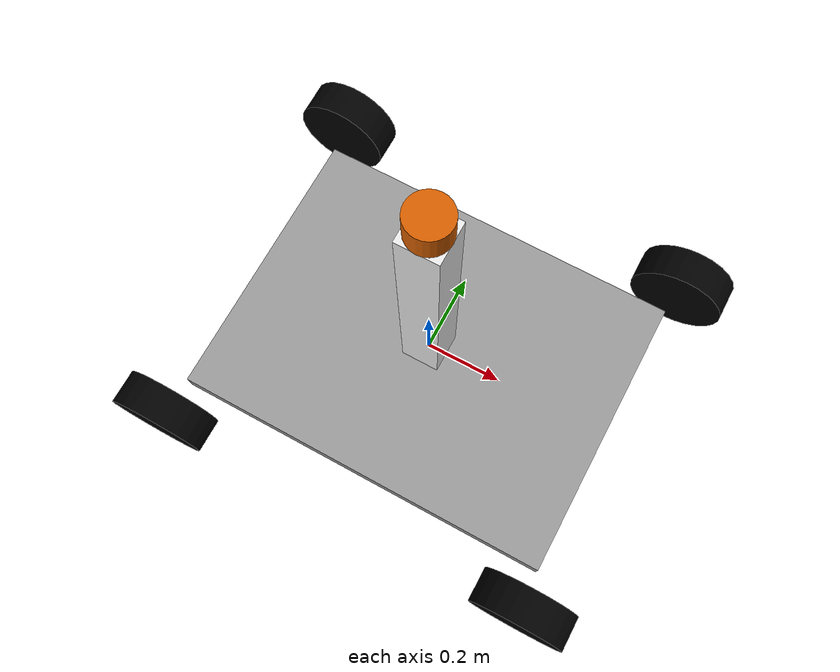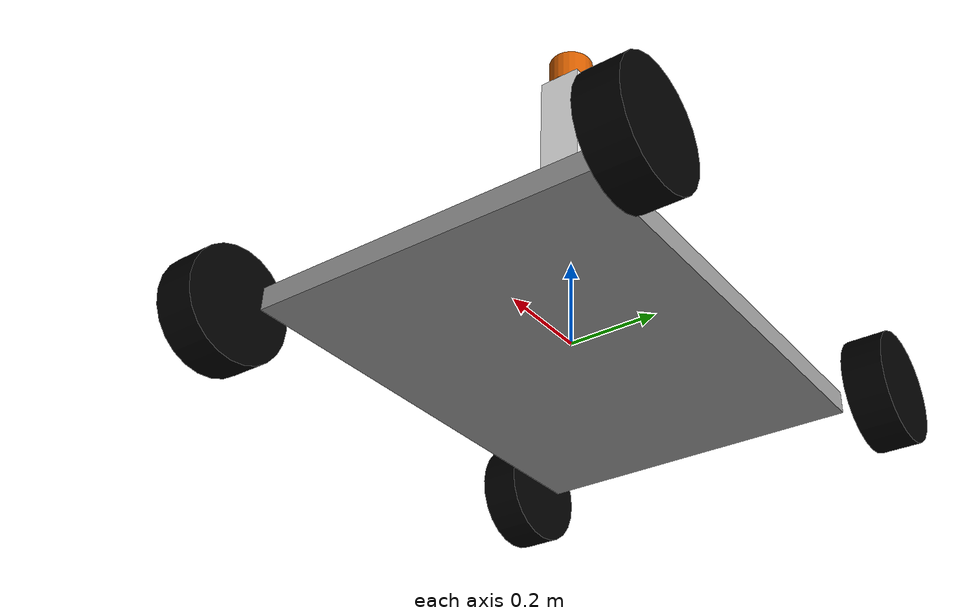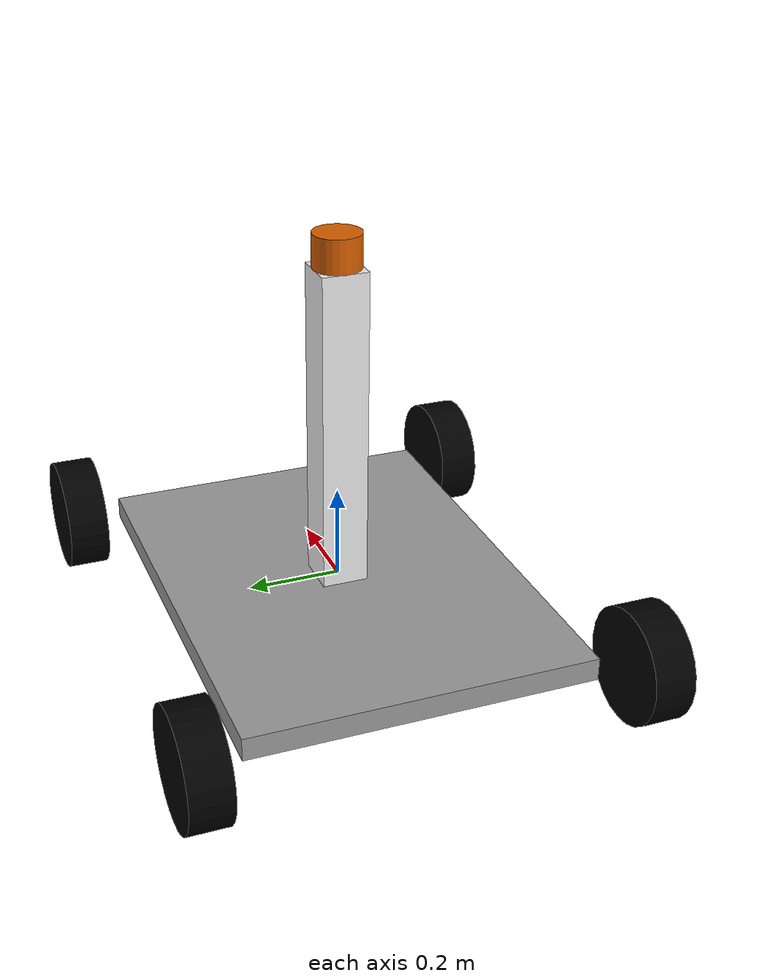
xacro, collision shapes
<?xml version="1.0"?>

<robot name="ackermann_robot" xmlns:xacro="http://www.ros.org/wiki/xacro">

  <!-- includes -->

  <!-- Degree-to-radian conversions -->
  <xacro:property name="degrees_45" value="0.785398163"/>
  <xacro:property name="degrees_90" value="1.57079633"/>

  <!-- chassis_length is measured along the x axis, chassis_width
       along the y axis, and chassis_height along the z axis. -->
  <xacro:property name="chassis_length" value="1"/>
  <xacro:property name="chassis_width" value="0.75"/>
  <xacro:property name="chassis_height" value="0.05"/>
  <xacro:property name="chassis_mass" value="3.788"/>

  <xacro:property name="hub_dia" value="0.09652"/>
  <xacro:property name="tire_dia" value="0.25"/>
  <xacro:property name="tire_width" value="0.0889"/>
  <xacro:property name="hex_hub_depth" value="0.01445"/>
  <xacro:property name="wheel_mass" value="0.29"/>

  <xacro:property name="wheelbase" value="1.02"/>
  <xacro:property name="hex_hub_dist" value="1"/>
  <xacro:property name="axle_length" value="0.03"/>
  <xacro:property name="wheel_travel" value="0.084"/>
  <xacro:property name="shock_z_offset" value="0.0655"/>

  <xacro:property name="shock_eff_limit" value="12.5106"/>
  <xacro:property name="shock_vel_limit" value="1000"/>

  <xacro:property name="axle_eff_limit" value="5.12766"/>
  <xacro:property name="axle_vel_limit" value="244.8696"/>

  <!-- These constants are used to simulate a Traxxas 2056 servo operated at
       6 V. servo_stall_torque is measured in N m. servo_no_load_speed is
       measured in rad/s. -->
  <xacro:property name="servo_stall_torque" value="0.5649"/>
  <xacro:property name="servo_no_load_speed" value="4.553"/>

  <!-- ctrl_period is gazebo_ros_control's control period. Unit: hertz. -->
  <xacro:property name="ctrl_period" value="0.01"/>

  <material name="battery_mat">
    <color rgba="0 0 1 1"/>
  </material>
  <material name="chassis_mat">
    <color rgba="0.6 0.6 0.6 1"/>
  </material>
  <material name="tire_mat">
    <color rgba="0 0 0 1"/>
  </material>

  <!-- Null inertial element. This is needed to make the model work with
       Gazebo. -->
  <xacro:macro name="null_inertial">
    <inertial>
      <mass value="0.001"/>
      <inertia ixx="0.001" ixy="0" ixz="0" iyy="0.001" iyz="0" izz="0.001"/>
    </inertial>
  </xacro:macro>

  <!-- Inertia of a solid cuboid. Width is measured along the x axis, depth
       along the y axis, and height along the z axis. -->
  <xacro:macro name="solid_cuboid_inertial"
               params="width depth height mass *origin">
    <inertial>
      <xacro:insert_block name="origin"/>
      <mass value="${mass}"/>
      <inertia ixx="${mass * (depth * depth + height * height) / 12}"
               ixy="0" ixz="0"
               iyy="${mass * (width * width + height * height) / 12}"
               iyz="0"
               izz="${mass * (width * width + depth * depth) / 12}"/>
    </inertial>
  </xacro:macro>

  <xacro:macro name="thick_walled_tube_inertial"
               params="inner_rad outer_rad height mass">
    <inertial>
      <mass value="${mass}"/>
      <inertia ixx="${(1 / 12) * mass * (3 * (inner_rad * inner_rad +
                    outer_rad * outer_rad) + height * height)}"
               ixy="0" ixz="0"
               iyy="${(1 / 12) * mass * (3 * (inner_rad * inner_rad +
                    outer_rad * outer_rad) + height * height)}"
               iyz="0"
               izz="${mass * (inner_rad * inner_rad +
                    outer_rad * outer_rad) / 2}"/>
    </inertial>
  </xacro:macro>

  <!-- Shock absorber -->
  <xacro:macro name="shock"
               params="lr_prefix fr_prefix lr_reflect fr_reflect child">
    <joint name="${lr_prefix}_${fr_prefix}_shock" type="prismatic">
      <parent link="chassis"/>
      <child link="${child}"/>

      <origin xyz="${fr_reflect * wheelbase / 2}
                   ${lr_reflect * ((hex_hub_dist / 2) - axle_length)}
                   ${(wheel_travel / 2) - shock_z_offset}"/>
      <axis xyz="0 0 -1"/>
      <limit lower="${-wheel_travel / 2}" upper="${wheel_travel / 2}"
             effort="${shock_eff_limit}" velocity="${shock_vel_limit}"/>
    </joint>
    <transmission name="${lr_prefix}_${fr_prefix}_shock_trans">
      <type>transmission_interface/SimpleTransmission</type>
      <joint name="${lr_prefix}_${fr_prefix}_shock">
        <hardwareInterface>hardware_interface/EffortJointInterface</hardwareInterface>
      </joint>
      <actuator name="${lr_prefix}_${fr_prefix}_shock_act">
        <mechanicalReduction>1</mechanicalReduction>
      </actuator>
    </transmission>
  </xacro:macro>

  <!-- The "wheel" macro defines an axle carrier, axle, and wheel. -->
  <xacro:macro name="wheel" params="lr_prefix fr_prefix lr_reflect">
    <link name="${lr_prefix}_${fr_prefix}_axle_carrier">
      <xacro:null_inertial/>
    </link>

    <!-- The left and right axles have the same axis so that identical
         rotation values cause the wheels to rotate in the same direction. -->
    <joint name="${lr_prefix}_${fr_prefix}_axle" type="continuous">
      <parent link="${lr_prefix}_${fr_prefix}_axle_carrier"/>
      <child link="${lr_prefix}_${fr_prefix}_wheel"/>
      <origin rpy="${degrees_90} 0 0"/>
      <axis xyz="0 0 -1"/>
      <limit effort="${axle_eff_limit}" velocity="${axle_vel_limit}"/>
    </joint>
    <transmission name="${lr_prefix}_${fr_prefix}_axle_trans">
      <type>transmission_interface/SimpleTransmission</type>
      <joint name="${lr_prefix}_${fr_prefix}_axle">
        <hardwareInterface>hardware_interface/EffortJointInterface</hardwareInterface>
      </joint>
      <actuator name="${lr_prefix}_${fr_prefix}_axle_act">
        <mechanicalReduction>1</mechanicalReduction>
      </actuator>
    </transmission>

    <link name="${lr_prefix}_${fr_prefix}_wheel">
      <visual>
        <origin xyz="0
                     ${lr_reflect * (axle_length - (tire_width /
                     2 - hex_hub_depth))}
                     0"/>
        <geometry>
          <cylinder radius="${tire_dia / 2}" length="${tire_width}"/>
        </geometry>
        <material name="tire_mat"/>
      </visual>

      <collision>
        <origin xyz="0
                     ${lr_reflect * (axle_length - (tire_width /
                     2 - hex_hub_depth))}
                     0"/>
        <geometry>
          <cylinder radius="${tire_dia / 2}" length="${tire_width}"/>
        </geometry>
      </collision>

      <xacro:thick_walled_tube_inertial
          inner_rad="${hub_dia / 2}" outer_rad="${tire_dia / 2}"
          height="${tire_width}" mass="${wheel_mass}"/>
    </link>

    <gazebo reference="${lr_prefix}_${fr_prefix}_wheel">
      <material>Gazebo/Black</material>
    </gazebo>
  </xacro:macro>

  <!-- Front wheel -->
  <xacro:macro name="front_wheel"
               params="lr_prefix fr_prefix lr_reflect fr_reflect">
    <xacro:shock lr_prefix="${lr_prefix}" fr_prefix="${fr_prefix}"
                 lr_reflect="${lr_reflect}" fr_reflect="${fr_reflect}"
                 child="${lr_prefix}_steering_link"/>

    <link name="${lr_prefix}_steering_link">
      <xacro:null_inertial/>
    </link>

    <joint name="${lr_prefix}_steering_joint" type="revolute">
      <parent link="${lr_prefix}_steering_link"/>
      <child link="${lr_prefix}_${fr_prefix}_axle_carrier"/>
      <axis xyz="0 0 1"/>
      <limit lower="${-degrees_45}" upper="${degrees_45}"
             effort="${servo_stall_torque}" velocity="${servo_no_load_speed}"/>
    </joint>
    <transmission name="${lr_prefix}_steering_trans">
      <type>transmission_interface/SimpleTransmission</type>
      <joint name="${lr_prefix}_steering_joint">
        <hardwareInterface>hardware_interface/EffortJointInterface</hardwareInterface>
      </joint>
      <actuator name="${lr_prefix}_steering_act">
        <mechanicalReduction>1</mechanicalReduction>
      </actuator>
    </transmission>

    <xacro:wheel lr_prefix="${lr_prefix}" fr_prefix="${fr_prefix}"
                 lr_reflect="${lr_reflect}"/>
  </xacro:macro>

  <!-- Rear wheel -->
  <xacro:macro name="rear_wheel"
               params="lr_prefix fr_prefix lr_reflect fr_reflect">
    <xacro:shock lr_prefix="${lr_prefix}" fr_prefix="${fr_prefix}"
                 lr_reflect="${lr_reflect}" fr_reflect="${fr_reflect}"
                 child="${lr_prefix}_${fr_prefix}_axle_carrier"/>
    <xacro:wheel lr_prefix="${lr_prefix}" fr_prefix="${fr_prefix}"
                 lr_reflect="${lr_reflect}"/>
  </xacro:macro>

  <!-- base_link must have geometry so that its axes can be displayed in
       rviz. -->
  <link name="base_link" />

  <!-- Chassis -->
  <link name="chassis">
    <visual>
      <origin xyz="0 0 ${-chassis_height / 2}"/>
      <geometry>
        <box size="${chassis_length} ${chassis_width} ${chassis_height}"/>
      </geometry>
      <material name="chassis_mat"/>
    </visual>

    <collision>
      <origin xyz="0 0 ${-chassis_height / 2}"/>
      <geometry>
        <box size="${chassis_length} ${chassis_width} ${chassis_height}"/>
      </geometry>
    </collision>

    <xacro:solid_cuboid_inertial
        width="${chassis_length}" depth="${chassis_width}"
        height="${chassis_height}" mass="${chassis_mass}">
      <origin xyz="0 0 ${-chassis_height / 2}"/>
    </xacro:solid_cuboid_inertial>
  </link>
  <gazebo reference="chassis">
    <material>Gazebo/White</material>
  </gazebo>

  <joint name="base_link_to_chasis" type="fixed">
    <parent link="base_link"/>
    <child link="chassis"/>
  </joint>

  <!-- Wheels -->
  <xacro:front_wheel lr_prefix="left" fr_prefix="front"
                     lr_reflect="1" fr_reflect="1"/>
  <xacro:front_wheel lr_prefix="right" fr_prefix="front"
                     lr_reflect="-1" fr_reflect="1"/>
  <xacro:rear_wheel lr_prefix="left" fr_prefix="rear"
                    lr_reflect="1" fr_reflect="-1"/>
  <xacro:rear_wheel lr_prefix="right" fr_prefix="rear"
                    lr_reflect="-1" fr_reflect="-1"/>

  <!-- gazebo plugins for control and odometry ground truth-->
  <gazebo>
    <plugin name="gazebo_ros_control" filename="libgazebo_ros_control.so" />
    <plugin name="p3d_base_controller" filename="libgazebo_ros_p3d.so">
      <alwaysOn>true</alwaysOn>
      <updateRate>50.0</updateRate>
      <bodyName>base_link</bodyName>
      <topicName>odom_gazebo</topicName>
      <gaussianNoise>0.01</gaussianNoise>
      <frameName>world</frameName>
      <xyzOffsets>0 0 0</xyzOffsets>
      <rpyOffsets>0 0 0</rpyOffsets>
    </plugin>
  </gazebo>
  <link name="lidar_stand">
    <visual>
      <geometry>
        <box size="0.1 0.1 0.7" />
      </geometry>
        <!--material name="black" /-->
    </visual>
    <collision>
      <geometry>
        <box size="0.1 0.1 0.7" />
      </geometry>
    </collision>
    <inertial>
      <mass value="1" />
      <inertia ixx="0.145833" ixy="0.0" ixz="0.145833" iyy="0.0" iyz="0.0" izz="0.1250"/>
    </inertial>
  </link>
  <joint name="joint_name" type="fixed">
      <parent link="chassis"/>
      <child link="lidar_stand"/>
      <axis xyz="0.0 0.0 1.0"/>
      <origin xyz="0.0 0.0 0.35"/>
      <!--limit lower="0.0" upper="0.0" effort="0.0" velocity="0.0"/-->
      <joint_properties damping="1.0" friction="1.0"/>
  </joint>
  <gazebo reference="lidar_stand">
      <material>Gazebo/White</material>
  </gazebo>

  <xacro:include filename="$(find velodyne_description)/urdf/VLP-16.urdf.xacro"/>
  <VLP-16 parent="chassis" name="velodyne" topic="/velodyne_points" hz="10" samples="1024" gpu="false" lasers="16" max_range="100">
    <origin xyz="0 0 0.7" rpy="0 0 0 " />
  </VLP-16>

</robot>

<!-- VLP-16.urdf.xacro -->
<robot xmlns:xacro="http://www.ros.org/wiki/xacro" name="VLP-16">
  <xacro:property name="M_PI" value="3.1415926535897931" />
  <xacro:macro name="VLP-16" params="*origin is_sim:=true parent:=base_link name:=velodyne tf_prefix:='' topic:=/velodyne_points organize_cloud:=false hz:=10 lasers:=16 samples:=1875 collision_range:=0.3 min_range:=0.0 max_range:=100.0 noise:=0.008 min_angle:=-${M_PI} max_angle:=${M_PI} gpu:=false">

    <joint name="${name}_base_mount_joint" type="fixed">
      <xacro:insert_block name="origin" />
      <parent link="${parent}"/>
      <child link="${name}_base_link"/>
    </joint>

    <link name="${name}_base_link">
      <inertial>
        <mass value="0.83"/>
        <origin xyz="0 0 0.03585"/>
        <inertia ixx="${(0.83 * (3.0*0.0516*0.0516 + 0.0717*0.0717)) / 12.0}" ixy="0" ixz="0"
          iyy="${(0.83 * (3.0*0.0516*0.0516 + 0.0717*0.0717)) / 12.0}" iyz="0"
          izz="${0.5 * 0.83 * (0.0516*0.0516)}"/>
      </inertial>
      <visual>
        <geometry>
          <mesh filename="package://velodyne_description/meshes/VLP16_base_1.dae" />
        </geometry>
      </visual>
      <visual>
        <geometry>
          <mesh filename="package://velodyne_description/meshes/VLP16_base_2.dae" />
        </geometry>
      </visual>
      <collision>
        <origin rpy="0 0 0" xyz="0 0 0.03585"/>
        <geometry>
          <cylinder radius="0.0516" length="0.0717"/>
        </geometry>
      </collision>
    </link>

    <joint name="${name}_base_scan_joint" type="fixed" >
      <origin xyz="0 0 0.0377" rpy="0 0 0" />
      <parent link="${name}_base_link" />
      <child link="${name}"/>
    </joint>

    <link name="${name}">
      <inertial>
        <mass value="0.01"/>
        <origin xyz="0 0 0"/>
        <inertia ixx="1e-7" ixy="0" ixz="0" iyy="1e-7" iyz="0" izz="1e-7"/>
      </inertial>
      <visual>
        <origin xyz="0 0 -0.0377" />
        <geometry>
          <mesh filename="package://velodyne_description/meshes/VLP16_scan.dae" />
        </geometry>
      </visual>
      <collision>
        <geometry>
          <sphere radius="0"/>
        </geometry>
      </collision>
    </link>

    <!-- Gazebo requires the velodyne_gazebo_plugins package -->
    <xacro:if value="${is_sim}">
        <gazebo reference="${name}">
            <xacro:if value="${gpu}">
                <sensor type="gpu_ray" name="${name}-VLP16">
                <pose>0 0 0 0 0 0</pose>
                <visualize>false</visualize>
                <update_rate>${hz}</update_rate>
                <ray>
                    <scan>
                    <horizontal>
                        <samples>${samples}</samples>
                        <resolution>1</resolution>
                        <min_angle>${min_angle}</min_angle>
                        <max_angle>${max_angle}</max_angle>
                    </horizontal>
                    <vertical>
                        <samples>${lasers}</samples>
                        <resolution>1</resolution>
                        <min_angle>-${15.0*M_PI/180.0}</min_angle>
                        <max_angle> ${15.0*M_PI/180.0}</max_angle>
                    </vertical>
                    </scan>
                    <range>
                    <min>${collision_range}</min>
                    <max>${max_range+1}</max>
                    <resolution>0.001</resolution>
                    </range>
                    <noise>
                    <type>gaussian</type>
                    <mean>0.0</mean>
                    <stddev>0.0</stddev>
                    </noise>
                </ray>
                <plugin name="gazebo_ros_laser_controller" filename="libgazebo_ros_velodyne_laser.so">
                    <ros>
                    <namespace>/${name}</namespace>
                    <remapping>~/out:=${topic}</remapping>
                    </ros>
                    <tf_prefix>${tf_prefix}</tf_prefix>
                    <frame_name>${name}</frame_name>
                    <organize_cloud>${organize_cloud}</organize_cloud>
                    <min_range>${min_range}</min_range>
                    <max_range>${max_range}</max_range>
                    <gaussian_noise>${noise}</gaussian_noise>
                </plugin>
                </sensor>
            </xacro:if>
            <xacro:unless value="${gpu}">
                <sensor type="ray" name="${name}-VLP16">
                <pose>0 0 0 0 0 0</pose>
                <visualize>false</visualize>
                <update_rate>${hz}</update_rate>
                <ray>
                    <scan>
                    <horizontal>
                        <samples>${samples}</samples>
                        <resolution>1</resolution>
                        <min_angle>${min_angle}</min_angle>
                        <max_angle>${max_angle}</max_angle>
                    </horizontal>
                    <vertical>
                        <samples>${lasers}</samples>
                        <resolution>1</resolution>
                        <min_angle>-${15.0*M_PI/180.0}</min_angle>
                        <max_angle> ${15.0*M_PI/180.0}</max_angle>
                    </vertical>
                    </scan>
                    <range>
                    <min>${collision_range}</min>
                    <max>${max_range+1}</max>
                    <resolution>0.001</resolution>
                    </range>
                    <noise>
                    <type>gaussian</type>
                    <mean>0.0</mean>
                    <stddev>0.0</stddev>
                    </noise>
                </ray>
                <plugin name="gazebo_ros_laser_controller" filename="libgazebo_ros_velodyne_laser.so">
                    <ros>
                    <namespace>/${name}</namespace>
                    <remapping>~/out:=${topic}</remapping>
                    </ros>
                    <tf_prefix>${tf_prefix}</tf_prefix>
                    <frame_name>${name}</frame_name>
                    <organize_cloud>${organize_cloud}</organize_cloud>
                    <min_range>${min_range}</min_range>
                    <max_range>${max_range}</max_range>
                    <gaussian_noise>${noise}</gaussian_noise>
                </plugin>
                </sensor>
            </xacro:unless>
        </gazebo>
    </xacro:if>

  </xacro:macro>
</robot>
